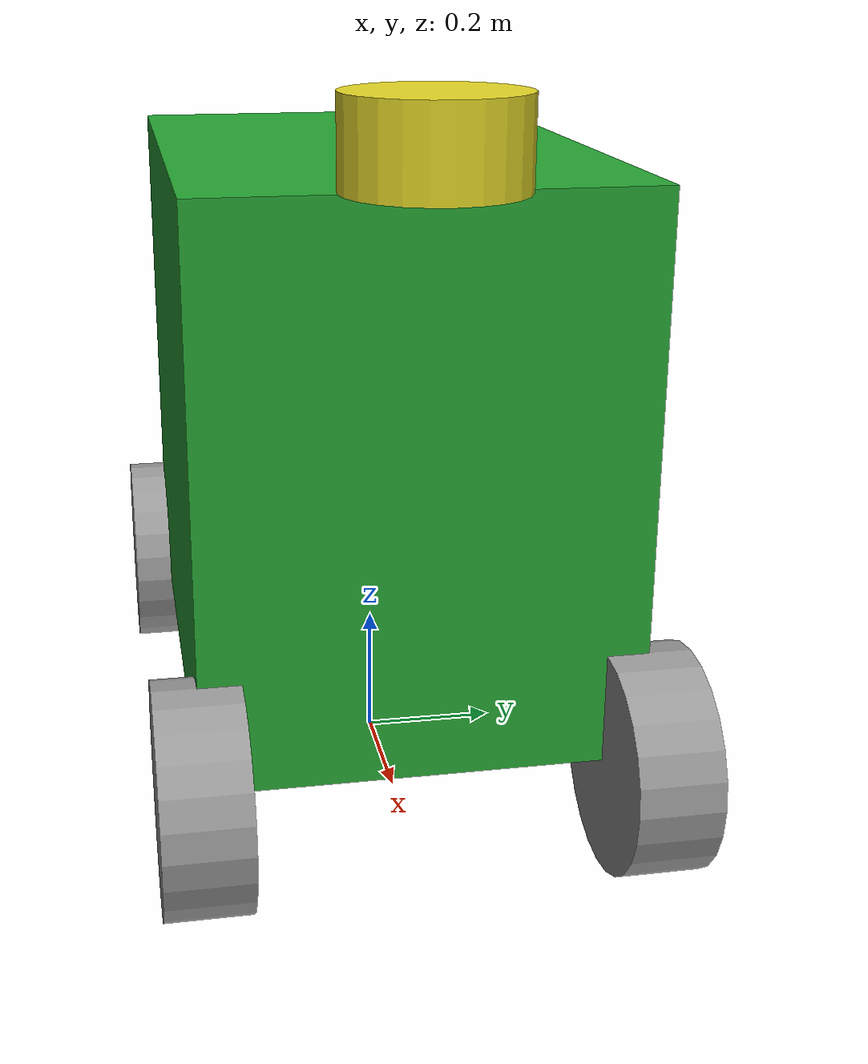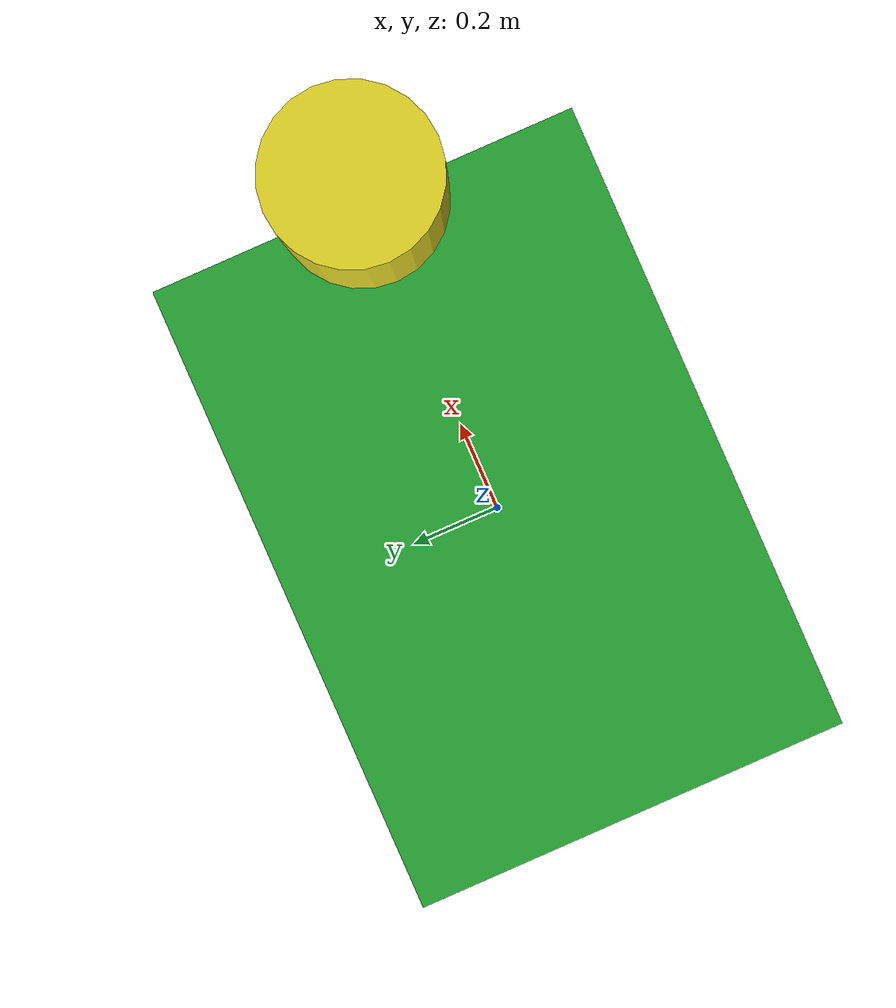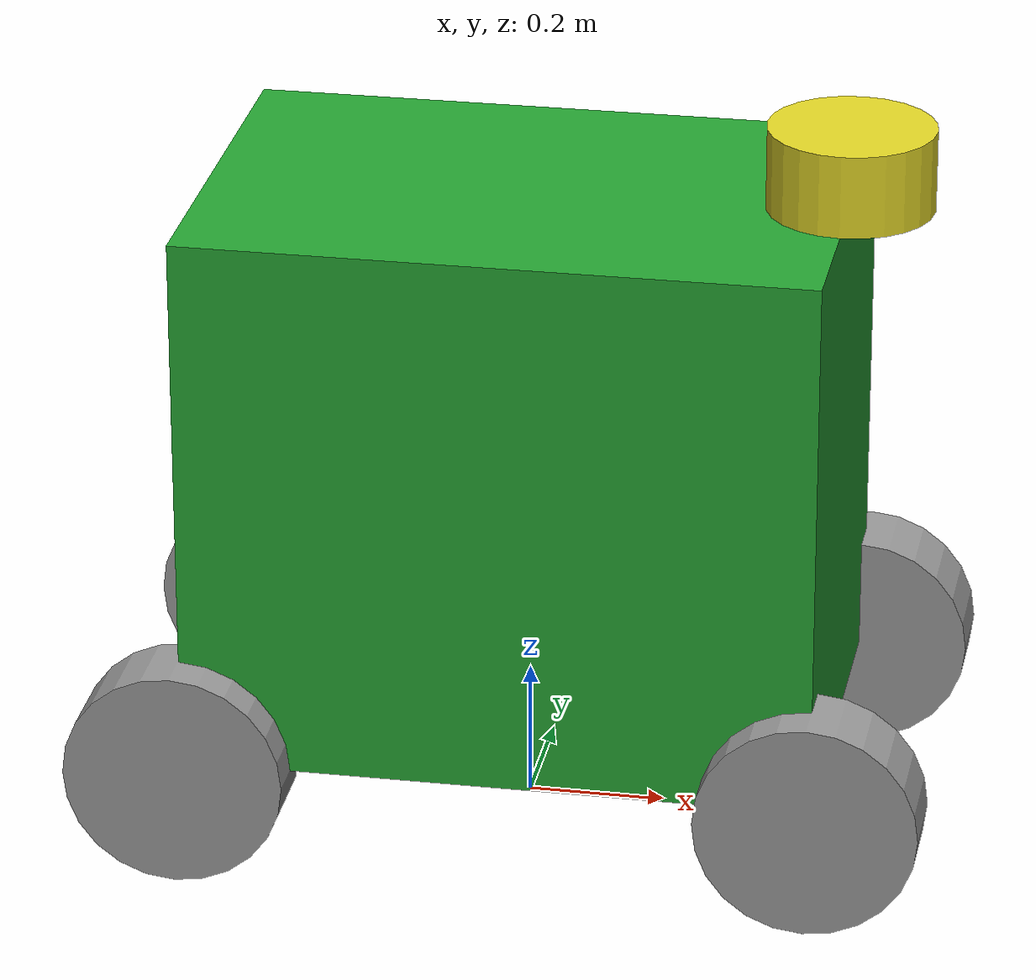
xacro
<?xml version="1.0"?>
<robot xmlns:xacro="http://www.ros.org/wiki/xacro" name="mobile_base">
  <xacro:property name="chassis_length" value="0.91"/>
  <!--36 in-->
  <xacro:property name="chassis_width" value="0.62"/>
  <!--24.5 in-->
  <xacro:property name="chassis_height" value="0.80"/>
  <xacro:property name="wheel_radius" value="0.16"/>
  <xacro:property name="wheel_width" value="0.12"/>
  <xacro:property name="lidar_length" value="0.12"/>
  <xacro:property name="lidar_radius" value="0.12"/>
  <xacro:property name="deg_to_rad" value="0.0174533"/>

  <link name="base_footprint"/>

  <link name="base_link">
    <visual>
      <geometry>
        <box size="0.91 0.62 0.80"/>
      </geometry>
      <origin xyz="0.0 0.0 0.0" rpy="0.0 0.0 0.0"/>
      <material name="green"/>
    </visual>

    <xacro:box_inertia m="40.0" x="${chassis_length}" y="${chassis_width}" z="${chassis_height}" o_xyz="0 0 ${chassis_height / 2.0}" o_rpy="0 0 0"/>
    <collision>
      <geometry>
        <box size="${chassis_length} ${chassis_width} ${chassis_height}"/>
      </geometry>
      <origin xyz="0.0 0.0 ${chassis_height / 2.0}" rpy="0.0 0.0 0.0"/>
    </collision>
  </link>

  <joint name="base_joint" type="fixed">
    <parent link="base_footprint"/>
    <child link="base_link"/>
    <origin xyz="0.0 0.0 ${0.5 * chassis_height + wheel_radius}" rpy="0.0 0.0 0.0"/>
  </joint>

  <xacro:macro name="wheel_link" params="side position">
    <xacro:property name="wheel_roll" value="${(pi/2) if side == 'left' else (-pi/2)}"/>
    <link name="${side}_${position}_wheel_link">
      <visual>
        <origin xyz="0.0 0.0 0.0" rpy="${wheel_roll} 0.0 0.0"/>
        <geometry>
          <cylinder radius="${wheel_radius}" length="${wheel_width}"/>
        </geometry>
        <material name="gray"/>
      </visual>
      <xacro:cylinder_inertia m="2.0" r="${wheel_radius}" l="${wheel_width}" o_xyz="0 0 ${wheel_radius}" o_rpy="${wheel_roll} 0 0"/>

      <collision>
        <origin xyz="0.0 0.0 0.0" rpy="0.0 0.0 0.0"/>
        <geometry>
          <sphere radius="${wheel_radius}"/>
        </geometry>
      </collision>
    </link>
  </xacro:macro>

  <xacro:wheel_link side="right" position="front"/>
  <xacro:wheel_link side="right" position="back"/>
  <xacro:wheel_link side="left" position="front"/>
  <xacro:wheel_link side="left" position="back"/>

  <xacro:macro name="wheel_joint" params="side position">
    <joint name="${side}_${position}_wheel_joint" type="continuous">
      <parent link="base_link"/>
      <child link="${side}_${position}_wheel_link"/>
      <origin
        xyz="${(0.5 * chassis_length) if position == 'front' else (-0.5 * chassis_length)}
                    ${(0.5 * chassis_width) if side == 'left' else (-0.5 * chassis_width)}
                    ${-0.5 * chassis_height}"
        rpy="0.0 0.0 0.0"
      />
      <axis xyz="0.0 1.0 0.0"/>
    </joint>
  </xacro:macro>

  <xacro:wheel_joint side="right" position="back"/>
  <xacro:wheel_joint side="left" position="back"/>

  <xacro:macro name="steer_assembly" params="side">
    <link name="${side}_steer_link"/>

    <joint name="${side}_steer_joint" type="revolute">
      <parent link="base_link"/>
      <child link="${side}_steer_link"/>
      <origin xyz="${0.5 * chassis_length}
                 ${(0.5 * chassis_width) if side == 'left' else (-0.5 * chassis_width)}
                 ${-0.5 * chassis_height}" rpy="0 0 0"/>
      <axis xyz="0 0 1"/>
      <limit lower="${-22.5 * deg_to_rad}" upper="${22.5 * deg_to_rad}" effort="5000" velocity="50"/>
    </joint>

    <joint name="${side}_front_wheel_joint" type="continuous">
      <parent link="${side}_steer_link"/>
      <child link="${side}_front_wheel_link"/>
      <origin xyz="0 0 0" rpy="0 0 0"/>
      <axis xyz="0 1 0"/>
    </joint>
  </xacro:macro>

  <xacro:steer_assembly side="left"/>
  <xacro:steer_assembly side="right"/>

  <joint name="laser_joint" type="fixed">
    <parent link="base_link"/>
    <child link="laser_frame"/>
    <origin xyz="${chassis_length/2} 0 ${chassis_height/2 + lidar_length/2}" rpy="0 0 0"/>
  </joint>

  <link name="laser_frame">
    <visual>
      <geometry>
        <cylinder radius="${lidar_radius}" length="${lidar_length}"/>
      </geometry>
      <material name="yellow"/>
    </visual>
    <collision>
      <geometry>
        <cylinder radius="${lidar_radius}" length="${lidar_length}"/>
      </geometry>
    </collision>
    <xacro:cylinder_inertia m="0.1" r="${lidar_radius}" l="${lidar_length}" o_xyz="0 0 ${lidar_length/2}" o_rpy="0 0 0"/>
  </link>
</robot>
